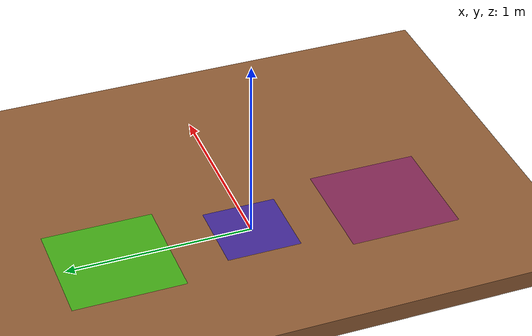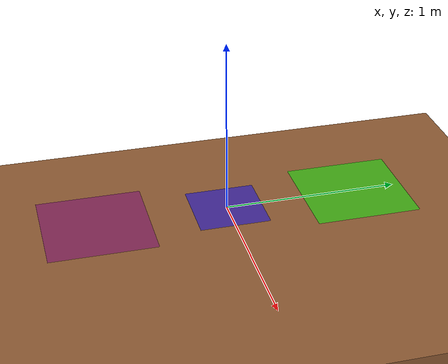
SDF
<?xml version="1.0" ?>
<sdf version="1.7">
  <world name="collaborative_world">

    <light type="directional" name="sun">
      <cast_shadows>true</cast_shadows>
      <pose>0 0 10 0 0 0</pose> <diffuse>0.8 0.8 0.8 1</diffuse>
      <specular>0.2 0.2 0.2 1</specular>
      <attenuation>
        <range>1000</range>
        <constant>0.9</constant>
        <linear>0.01</linear>
        <quadratic>0.001</quadratic>
      </attenuation>
      <direction>0 0 -1</direction>
    </light>

    <scene>
      <ambient>0.4 0.4 0.4 1</ambient>
      <background>0.7 0.7 0.7 1</background>
      <shadows>true</shadows>
    </scene>

    <model name="floor">
      <static>true</static>
      <pose>0 0 -0.051 0 0 0</pose>
      <link name="link">
        <collision name="collision">
          <geometry><box><size>20 20 0.1</size></box></geometry>
          <surface>
            <friction>
              <ode>
                <mu>1.0</mu>
                <mu2>1.0</mu2>
              </ode>
            </friction>
          </surface>
        </collision>
        <visual name="visual">
          <geometry><box><size>20 20 0.1</size></box></geometry>
          <material>
            <ambient>0.55 0.35 0.2 1</ambient>
            <diffuse>0.55 0.35 0.2 1</diffuse>
          </material>
        </visual>
      </link>
    </model>

    <model name="left_area">
      <static>true</static>
      <pose>0 0.75 0.001 0 0 0</pose>
      <link name="link">
        <visual name="visual">
          <geometry><plane><normal>0 0 1</normal><size>0.6 0.6</size></plane></geometry>
          <material><ambient>0 1 0 0.5</ambient><diffuse>0 1 0 0.5</diffuse></material>
        </visual>
      </link>
    </model>

    <model name="right_area">
      <static>true</static>
      <pose>0 -0.75 0.001 0 0 0</pose>
      <link name="link">
        <visual name="visual">
          <geometry><plane><normal>0 0 1</normal><size>0.6 0.6</size></plane></geometry>
          <material><ambient>0.5 0 0.5 0.5</ambient><diffuse>0.5 0 0.5 0.5</diffuse></material>
        </visual>
      </link>
    </model>

    <model name="exchange_area">
      <static>true</static>
      <pose>0 0 0.001 0 0 0</pose>
      <link name="link">
        <visual name="visual">
          <geometry>
            <plane>
              <normal>0 0 1</normal>
              <size>0.4 0.4</size>
            </plane>
          </geometry>
          <material>
            <ambient>0 0 1 0.5</ambient> <diffuse>0 0 1 0.5</diffuse>
            <specular>0 0 0 0</specular>
            <emissive>0 0 0 0</emissive>
          </material>
        </visual>
      </link>
    </model>

    <physics name="1ms" type="ignored">
        <max_step_size>0.001</max_step_size>
        <real_time_factor>1.0</real_time_factor>
    </physics>
    <gravity>0 0 -9.81</gravity>

    <gui fullscreen='0'>
      <camera name='user_camera'>
        <pose>0.8 -2.5 2.5 0 0.8 1.57</pose>
        <view_controller>orbit</view_controller>
      </camera>
    </gui>

  </world>
</sdf>
